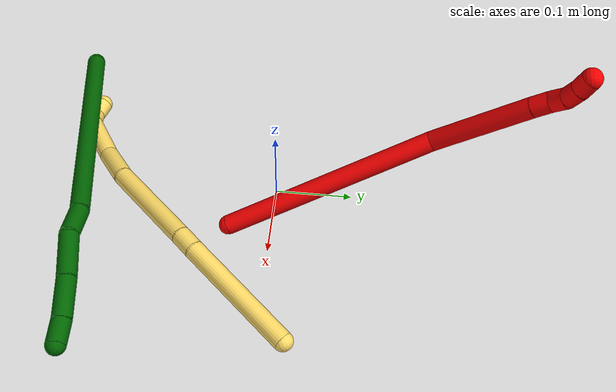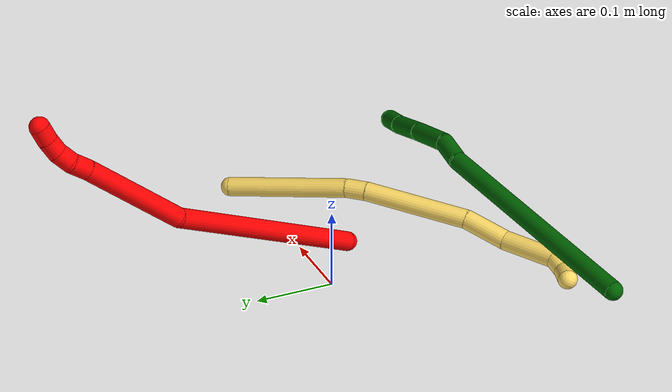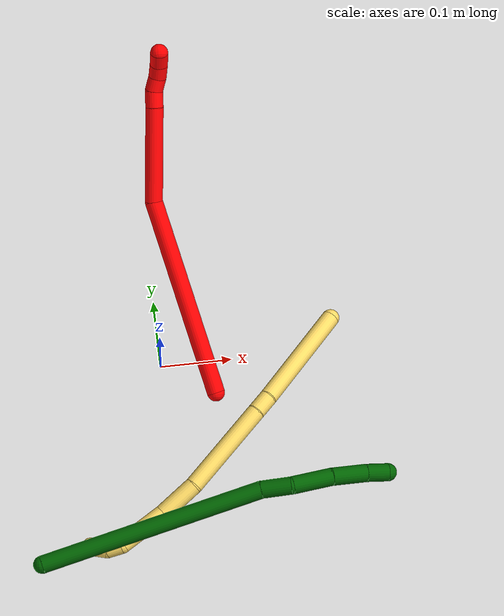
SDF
<sdf version="1.7">
 <world name="default">
  <model name="photoneo_s_sensor">
   <static>1</static>
   <pose>0 0 2 1.57079 1.57079 3.14159</pose>
   <link name="link">
    <inertial><mass>0.1</mass></inertial>
    <sensor name="sensor" type="depth">
     <update_rate>30</update_rate>
     <camera>
      <horizontal_fov>1.22</horizontal_fov>
      <image><width>1920</width><height>1200</height><format>B8G8R8</format></image>
      <clip><near>0.1</near><far>4</far></clip>
      <depth_camera><output>points</output></depth_camera>
     </camera>
     <plugin name="camera_plugin" filename="libgazebo_ros_depth_camera.so">
      <baseline>0.2</baseline>
      <alwaysOn>1</alwaysOn>
      <updateRate>0.0</updateRate>
      <cameraName>camera_ir</cameraName>
      <imageTopicName>/camera/color/image_raw</imageTopicName>
      <cameraInfoTopicName>/camera/color/camera_info</cameraInfoTopicName>
      <depthImageTopicName>/camera/depth/image_raw</depthImageTopicName>
      <depthImageCameraInfoTopicName>/camera/depth/camera_info</depthImageCameraInfoTopicName>
      <pointCloudTopicName>/camera/depth/points</pointCloudTopicName>
      <frameName>fr_optical</frameName>
      <pointCloudCutoff>0.1</pointCloudCutoff>
      <pointCloudCutoffMax>2.0</pointCloudCutoffMax>
      <distortionK1>0</distortionK1>
      <distortionK2>0</distortionK2>
      <distortionK3>0</distortionK3>
      <distortionT1>0</distortionT1>
      <distortionT2>0</distortionT2>
      <CxPrime>0</CxPrime>
      <Cx>0</Cx>
      <Cy>0</Cy>
      <focalLength>0</focalLength>
      <hackBaseline>0</hackBaseline>
     </plugin>
    </sensor>
   </link>
  </model>
  <model name="bin">
   <static>1</static>
   <link name="bottom">
    <collision name="collision-bottom">
     <pose>0 0 -0.01 0 -0 0</pose>
     <geometry><box><size>0.8 0.6 0.02</size></box></geometry>
     <surface>
      <friction><ode><mu>100</mu><mu2>100</mu2></ode></friction>
      <contact><collide_bitmask>65535</collide_bitmask></contact>
     </surface>
    </collision>
   </link>
   <link name="west_wall">
    <collision name="collision-west_wall">
     <pose>-0.41 0 0.1 0 -0 0</pose>
     <geometry><box><size>0.02 0.6 0.2</size></box></geometry>
     <surface>
      <friction><ode><mu>100</mu><mu2>100</mu2></ode></friction>
      <contact><collide_bitmask>65535</collide_bitmask></contact>
     </surface>
    </collision>
   </link>
   <link name="east_wall">
    <collision name="collision-east_wall">
     <pose>0.41 0 0.1 0 -0 0</pose>
     <geometry><box><size>0.02 0.6 0.2</size></box></geometry>
     <surface>
      <friction><ode><mu>100</mu><mu2>100</mu2></ode></friction>
      <contact><collide_bitmask>65535</collide_bitmask></contact>
     </surface>
    </collision>
   </link>
   <link name="south_wall">
    <collision name="collision-south_wall">
     <pose>0 -0.31 0.1 0 -0 0</pose>
     <geometry><box><size>0.8 0.02 0.2</size></box></geometry>
     <surface>
      <friction><ode><mu>100</mu><mu2>100</mu2></ode></friction>
      <contact><collide_bitmask>65535</collide_bitmask></contact>
     </surface>
    </collision>
   </link>
   <link name="north_wall">
    <collision name="collision-north_wall">
     <pose>0 0.31 0.1 0 -0 0</pose>
     <geometry><box><size>0.8 0.02 0.2</size></box></geometry>
     <surface>
      <friction><ode><mu>100</mu><mu2>100</mu2></ode></friction>
      <contact><collide_bitmask>65535</collide_bitmask></contact>
     </surface>
    </collision>
   </link>
  </model>
  <model name="2">
   <static>0</static>
   <link name="2">
    <collision name="collision-cylinder-e_1_1_4">
     <pose>0.000659 0.038646 0.135613 -0.277617 0.004675 -0.000653</pose>
     <geometry><cylinder><radius>0.0125</radius><length>0.282027</length></cylinder></geometry>
     <surface>
      <friction><ode><mu>1.16</mu><mu2>1.16</mu2><slip1>0</slip1><slip2>0</slip2></ode></friction>
      <contact><ode><kp>1e+06</kp><kd>1</kd><max_vel>0</max_vel><min_depth>0.001</min_depth></ode></contact>
     </surface>
    </collision>
    <visual name="visual-cylinder-e_1_1_4">
     <pose>0.000659 0.038646 0.135613 -0.277617 0.004675 -0.000653</pose>
     <geometry><cylinder><radius>0.0125</radius><length>0.282027</length></cylinder></geometry>
     <material><ambient>1 0 0 1</ambient></material>
    </visual>
    <collision name="collision-cylinder-e_2_4_5">
     <pose>-0.020253 0.08428 0.33444 -0.110081 -0.327 0.018178</pose>
     <geometry><cylinder><radius>0.0125</radius><length>0.134315</length></cylinder></geometry>
     <surface>
      <friction><ode><mu>1.16</mu><mu2>1.16</mu2><slip1>0</slip1><slip2>0</slip2></ode></friction>
      <contact><ode><kp>1e+06</kp><kd>1</kd><max_vel>0</max_vel><min_depth>0.001</min_depth></ode></contact>
     </surface>
    </collision>
    <visual name="visual-cylinder-e_2_4_5">
     <pose>-0.020253 0.08428 0.33444 -0.110081 -0.327 0.018178</pose>
     <geometry><cylinder><radius>0.0125</radius><length>0.134315</length></cylinder></geometry>
     <material><ambient>1 0 0 1</ambient></material>
    </visual>
    <collision name="collision-cylinder-e_3_5_6">
     <pose>-0.044558 0.092448 0.408677 -0.106803 -0.241829 0.012989</pose>
     <geometry><cylinder><radius>0.0125</radius><length>0.022838</length></cylinder></geometry>
     <surface>
      <friction><ode><mu>1.16</mu><mu2>1.16</mu2><slip1>0</slip1><slip2>0</slip2></ode></friction>
      <contact><ode><kp>1e+06</kp><kd>1</kd><max_vel>0</max_vel><min_depth>0.001</min_depth></ode></contact>
     </surface>
    </collision>
    <visual name="visual-cylinder-e_3_5_6">
     <pose>-0.044558 0.092448 0.408677 -0.106803 -0.241829 0.012989</pose>
     <geometry><cylinder><radius>0.0125</radius><length>0.022838</length></cylinder></geometry>
     <material><ambient>1 0 0 1</ambient></material>
    </visual>
    <collision name="collision-cylinder-e_4_6_7">
     <pose>-0.052404 0.093011 0.428524 0.070083 -0.524013 -0.018801</pose>
     <geometry><cylinder><radius>0.0125</radius><length>0.020431</length></cylinder></geometry>
     <surface>
      <friction><ode><mu>1.16</mu><mu2>1.16</mu2><slip1>0</slip1><slip2>0</slip2></ode></friction>
      <contact><ode><kp>1e+06</kp><kd>1</kd><max_vel>0</max_vel><min_depth>0.001</min_depth></ode></contact>
     </surface>
    </collision>
    <visual name="visual-cylinder-e_4_6_7">
     <pose>-0.052404 0.093011 0.428524 0.070083 -0.524013 -0.018801</pose>
     <geometry><cylinder><radius>0.0125</radius><length>0.020431</length></cylinder></geometry>
     <material><ambient>1 0 0 1</ambient></material>
    </visual>
    <collision name="collision-cylinder-e_5_7_8">
     <pose>-0.063791 0.09449 0.444951 -0.269257 -0.67196 0.094532</pose>
     <geometry><cylinder><radius>0.0125</radius><length>0.02016</length></cylinder></geometry>
     <surface>
      <friction><ode><mu>1.16</mu><mu2>1.16</mu2><slip1>0</slip1><slip2>0</slip2></ode></friction>
      <contact><ode><kp>1e+06</kp><kd>1</kd><max_vel>0</max_vel><min_depth>0.001</min_depth></ode></contact>
     </surface>
    </collision>
    <visual name="visual-cylinder-e_5_7_8">
     <pose>-0.063791 0.09449 0.444951 -0.269257 -0.67196 0.094532</pose>
     <geometry><cylinder><radius>0.0125</radius><length>0.02016</length></cylinder></geometry>
     <material><ambient>1 0 0 1</ambient></material>
    </visual>
    <collision name="collision-cylinder-e_6_8_2">
     <pose>-0.0768 0.099813 0.459379 -0.441508 -0.728541 0.170714</pose>
     <geometry><cylinder><radius>0.0125</radius><length>0.020229</length></cylinder></geometry>
     <surface>
      <friction><ode><mu>1.16</mu><mu2>1.16</mu2><slip1>0</slip1><slip2>0</slip2></ode></friction>
      <contact><ode><kp>1e+06</kp><kd>1</kd><max_vel>0</max_vel><min_depth>0.001</min_depth></ode></contact>
     </surface>
    </collision>
    <visual name="visual-cylinder-e_6_8_2">
     <pose>-0.0768 0.099813 0.459379 -0.441508 -0.728541 0.170714</pose>
     <geometry><cylinder><radius>0.0125</radius><length>0.020229</length></cylinder></geometry>
     <material><ambient>1 0 0 1</ambient></material>
    </visual>
    <collision name="collision-sphere-2">
     <pose>-0.083534 0.103038 0.466202 0 -0 0</pose>
     <geometry><sphere><radius>0.0125</radius></sphere></geometry>
     <surface>
      <friction><ode><mu>1.16</mu><mu2>1.16</mu2><slip1>0</slip1><slip2>0</slip2></ode></friction>
      <contact><ode><kp>1e+06</kp><kd>1</kd><max_vel>0</max_vel><min_depth>0.001</min_depth></ode></contact>
     </surface>
    </collision>
    <visual name="visual-sphere-2">
     <pose>-0.083534 0.103038 0.466202 0 -0 0</pose>
     <geometry><sphere><radius>0.0125</radius></sphere></geometry>
     <material><ambient>1 0 0 1</ambient></material>
    </visual>
    <collision name="collision-sphere-4">
     <pose>0.001319 0.077293 0.271226 0 -0 0</pose>
     <geometry><sphere><radius>0.0125</radius></sphere></geometry>
     <surface>
      <friction><ode><mu>1.16</mu><mu2>1.16</mu2><slip1>0</slip1><slip2>0</slip2></ode></friction>
      <contact><ode><kp>1e+06</kp><kd>1</kd><max_vel>0</max_vel><min_depth>0.001</min_depth></ode></contact>
     </surface>
    </collision>
    <visual name="visual-sphere-4">
     <pose>0.001319 0.077293 0.271226 0 -0 0</pose>
     <geometry><sphere><radius>0.0125</radius></sphere></geometry>
     <material><ambient>1 0 0 1</ambient></material>
    </visual>
    <collision name="collision-sphere-1">
     <geometry><sphere><radius>0.0125</radius></sphere></geometry>
     <surface>
      <friction><ode><mu>1.16</mu><mu2>1.16</mu2><slip1>0</slip1><slip2>0</slip2></ode></friction>
      <contact><ode><kp>1e+06</kp><kd>1</kd><max_vel>0</max_vel><min_depth>0.001</min_depth></ode></contact>
     </surface>
    </collision>
    <visual name="visual-sphere-1">
     <geometry><sphere><radius>0.0125</radius></sphere></geometry>
     <material><ambient>1 0 0 1</ambient></material>
    </visual>
    <collision name="collision-sphere-8">
     <pose>-0.070066 0.096589 0.452555 0 -0 0</pose>
     <geometry><sphere><radius>0.0125</radius></sphere></geometry>
     <surface>
      <friction><ode><mu>1.16</mu><mu2>1.16</mu2><slip1>0</slip1><slip2>0</slip2></ode></friction>
      <contact><ode><kp>1e+06</kp><kd>1</kd><max_vel>0</max_vel><min_depth>0.001</min_depth></ode></contact>
     </surface>
    </collision>
    <visual name="visual-sphere-8">
     <pose>-0.070066 0.096589 0.452555 0 -0 0</pose>
     <geometry><sphere><radius>0.0125</radius></sphere></geometry>
     <material><ambient>1 0 0 1</ambient></material>
    </visual>
    <collision name="collision-sphere-5">
     <pose>-0.041824 0.091267 0.397654 0 -0 0</pose>
     <geometry><sphere><radius>0.0125</radius></sphere></geometry>
     <surface>
      <friction><ode><mu>1.16</mu><mu2>1.16</mu2><slip1>0</slip1><slip2>0</slip2></ode></friction>
      <contact><ode><kp>1e+06</kp><kd>1</kd><max_vel>0</max_vel><min_depth>0.001</min_depth></ode></contact>
     </surface>
    </collision>
    <visual name="visual-sphere-5">
     <pose>-0.041824 0.091267 0.397654 0 -0 0</pose>
     <geometry><sphere><radius>0.0125</radius></sphere></geometry>
     <material><ambient>1 0 0 1</ambient></material>
    </visual>
    <collision name="collision-sphere-6">
     <pose>-0.047293 0.09363 0.419701 0 -0 0</pose>
     <geometry><sphere><radius>0.0125</radius></sphere></geometry>
     <surface>
      <friction><ode><mu>1.16</mu><mu2>1.16</mu2><slip1>0</slip1><slip2>0</slip2></ode></friction>
      <contact><ode><kp>1e+06</kp><kd>1</kd><max_vel>0</max_vel><min_depth>0.001</min_depth></ode></contact>
     </surface>
    </collision>
    <visual name="visual-sphere-6">
     <pose>-0.047293 0.09363 0.419701 0 -0 0</pose>
     <geometry><sphere><radius>0.0125</radius></sphere></geometry>
     <material><ambient>1 0 0 1</ambient></material>
    </visual>
    <collision name="collision-sphere-7">
     <pose>-0.057516 0.092392 0.437347 0 -0 0</pose>
     <geometry><sphere><radius>0.0125</radius></sphere></geometry>
     <surface>
      <friction><ode><mu>1.16</mu><mu2>1.16</mu2><slip1>0</slip1><slip2>0</slip2></ode></friction>
      <contact><ode><kp>1e+06</kp><kd>1</kd><max_vel>0</max_vel><min_depth>0.001</min_depth></ode></contact>
     </surface>
    </collision>
    <visual name="visual-sphere-7">
     <pose>-0.057516 0.092392 0.437347 0 -0 0</pose>
     <geometry><sphere><radius>0.0125</radius></sphere></geometry>
     <material><ambient>1 0 0 1</ambient></material>
    </visual>
    <inertial>
     <pose>-0.014924 0.06031 0.239036 0 -0 0</pose>
     <mass>0.5</mass>
     <inertia>
      <ixx>0.002078</ixx>
      <ixy>0</ixy>
      <ixz>0</ixz>
      <iyy>0.002031</iyy>
      <iyz>0</iyz>
      <izz>-0.00044</izz>
     </inertia>
    </inertial>
   </link>
   <pose>0.072097 -0.053338 0.011497 1.00225 0.949317 2.62866</pose>
  </model>
  <model name="5">
   <static>0</static>
   <link name="5">
    <collision name="collision-cylinder-e_1_1_4">
     <pose>-0.05545 -0.044055 -0.038058 2.28329 -0.761064 -1.43676</pose>
     <geometry><cylinder><radius>0.0125</radius><length>0.160797</length></cylinder></geometry>
     <surface>
      <friction><ode><mu>1.16</mu><mu2>1.16</mu2><slip1>0</slip1><slip2>0</slip2></ode></friction>
      <contact><ode><kp>1e+06</kp><kd>1</kd><max_vel>0</max_vel><min_depth>0.001</min_depth></ode></contact>
     </surface>
    </collision>
    <visual name="visual-cylinder-e_1_1_4">
     <pose>-0.05545 -0.044055 -0.038058 2.28329 -0.761064 -1.43676</pose>
     <geometry><cylinder><radius>0.0125</radius><length>0.160797</length></cylinder></geometry>
     <material><ambient>1 0.858824 0.4 1</ambient></material>
    </visual>
    <collision name="collision-cylinder-e_2_4_5">
     <pose>-0.121313 -0.093926 -0.082923 2.43452 -0.860543 -1.78712</pose>
     <geometry><cylinder><radius>0.0125</radius><length>0.027465</length></cylinder></geometry>
     <surface>
      <friction><ode><mu>1.16</mu><mu2>1.16</mu2><slip1>0</slip1><slip2>0</slip2></ode></friction>
      <contact><ode><kp>1e+06</kp><kd>1</kd><max_vel>0</max_vel><min_depth>0.001</min_depth></ode></contact>
     </surface>
    </collision>
    <visual name="visual-cylinder-e_2_4_5">
     <pose>-0.121313 -0.093926 -0.082923 2.43452 -0.860543 -1.78712</pose>
     <geometry><cylinder><radius>0.0125</radius><length>0.027465</length></cylinder></geometry>
     <material><ambient>1 0.858824 0.4 1</ambient></material>
    </visual>
    <collision name="collision-cylinder-e_3_5_6">
     <pose>-0.185626 -0.121972 -0.12592 2.59076 -0.903445 -2.08676</pose>
     <geometry><cylinder><radius>0.0125</radius><length>0.137247</length></cylinder></geometry>
     <surface>
      <friction><ode><mu>1.16</mu><mu2>1.16</mu2><slip1>0</slip1><slip2>0</slip2></ode></friction>
      <contact><ode><kp>1e+06</kp><kd>1</kd><max_vel>0</max_vel><min_depth>0.001</min_depth></ode></contact>
     </surface>
    </collision>
    <visual name="visual-cylinder-e_3_5_6">
     <pose>-0.185626 -0.121972 -0.12592 2.59076 -0.903445 -2.08676</pose>
     <geometry><cylinder><radius>0.0125</radius><length>0.137247</length></cylinder></geometry>
     <material><ambient>1 0.858824 0.4 1</ambient></material>
    </visual>
    <collision name="collision-cylinder-e_4_6_7">
     <pose>-0.265175 -0.148078 -0.175399 2.85777 -1.07587 -2.67151</pose>
     <geometry><cylinder><radius>0.0125</radius><length>0.058291</length></cylinder></geometry>
     <surface>
      <friction><ode><mu>1.16</mu><mu2>1.16</mu2><slip1>0</slip1><slip2>0</slip2></ode></friction>
      <contact><ode><kp>1e+06</kp><kd>1</kd><max_vel>0</max_vel><min_depth>0.001</min_depth></ode></contact>
     </surface>
    </collision>
    <visual name="visual-cylinder-e_4_6_7">
     <pose>-0.265175 -0.148078 -0.175399 2.85777 -1.07587 -2.67151</pose>
     <geometry><cylinder><radius>0.0125</radius><length>0.058291</length></cylinder></geometry>
     <material><ambient>1 0.858824 0.4 1</ambient></material>
    </visual>
    <collision name="collision-cylinder-e_5_7_8">
     <pose>-0.322711 -0.162371 -0.20099 2.439 -1.10276 -2.06676</pose>
     <geometry><cylinder><radius>0.0125</radius><length>0.071461</length></cylinder></geometry>
     <surface>
      <friction><ode><mu>1.16</mu><mu2>1.16</mu2><slip1>0</slip1><slip2>0</slip2></ode></friction>
      <contact><ode><kp>1e+06</kp><kd>1</kd><max_vel>0</max_vel><min_depth>0.001</min_depth></ode></contact>
     </surface>
    </collision>
    <visual name="visual-cylinder-e_5_7_8">
     <pose>-0.322711 -0.162371 -0.20099 2.439 -1.10276 -2.06676</pose>
     <geometry><cylinder><radius>0.0125</radius><length>0.071461</length></cylinder></geometry>
     <material><ambient>1 0.858824 0.4 1</ambient></material>
    </visual>
    <collision name="collision-cylinder-e_6_8_9">
     <pose>-0.365433 -0.171325 -0.214003 -2.02375 -1.42188 1.88529</pose>
     <geometry><cylinder><radius>0.0125</radius><length>0.021911</length></cylinder></geometry>
     <surface>
      <friction><ode><mu>1.16</mu><mu2>1.16</mu2><slip1>0</slip1><slip2>0</slip2></ode></friction>
      <contact><ode><kp>1e+06</kp><kd>1</kd><max_vel>0</max_vel><min_depth>0.001</min_depth></ode></contact>
     </surface>
    </collision>
    <visual name="visual-cylinder-e_6_8_9">
     <pose>-0.365433 -0.171325 -0.214003 -2.02375 -1.42188 1.88529</pose>
     <geometry><cylinder><radius>0.0125</radius><length>0.021911</length></cylinder></geometry>
     <material><ambient>1 0.858824 0.4 1</ambient></material>
    </visual>
    <collision name="collision-cylinder-e_7_9_2">
     <pose>-0.386752 -0.169216 -0.21025 -0.144238 -1.16448 0.095056</pose>
     <geometry><cylinder><radius>0.0125</radius><length>0.022828</length></cylinder></geometry>
     <surface>
      <friction><ode><mu>1.16</mu><mu2>1.16</mu2><slip1>0</slip1><slip2>0</slip2></ode></friction>
      <contact><ode><kp>1e+06</kp><kd>1</kd><max_vel>0</max_vel><min_depth>0.001</min_depth></ode></contact>
     </surface>
    </collision>
    <visual name="visual-cylinder-e_7_9_2">
     <pose>-0.386752 -0.169216 -0.21025 -0.144238 -1.16448 0.095056</pose>
     <geometry><cylinder><radius>0.0125</radius><length>0.022828</length></cylinder></geometry>
     <material><ambient>1 0.858824 0.4 1</ambient></material>
    </visual>
    <collision name="collision-sphere-2">
     <pose>-0.397237 -0.168567 -0.205786 0 -0 0</pose>
     <geometry><sphere><radius>0.0125</radius></sphere></geometry>
     <surface>
      <friction><ode><mu>1.16</mu><mu2>1.16</mu2><slip1>0</slip1><slip2>0</slip2></ode></friction>
      <contact><ode><kp>1e+06</kp><kd>1</kd><max_vel>0</max_vel><min_depth>0.001</min_depth></ode></contact>
     </surface>
    </collision>
    <visual name="visual-sphere-2">
     <pose>-0.397237 -0.168567 -0.205786 0 -0 0</pose>
     <geometry><sphere><radius>0.0125</radius></sphere></geometry>
     <material><ambient>1 0.858824 0.4 1</ambient></material>
    </visual>
    <collision name="collision-sphere-9">
     <pose>-0.376267 -0.169864 -0.214715 0 -0 0</pose>
     <geometry><sphere><radius>0.0125</radius></sphere></geometry>
     <surface>
      <friction><ode><mu>1.16</mu><mu2>1.16</mu2><slip1>0</slip1><slip2>0</slip2></ode></friction>
      <contact><ode><kp>1e+06</kp><kd>1</kd><max_vel>0</max_vel><min_depth>0.001</min_depth></ode></contact>
     </surface>
    </collision>
    <visual name="visual-sphere-9">
     <pose>-0.376267 -0.169864 -0.214715 0 -0 0</pose>
     <geometry><sphere><radius>0.0125</radius></sphere></geometry>
     <material><ambient>1 0.858824 0.4 1</ambient></material>
    </visual>
    <collision name="collision-sphere-4">
     <pose>-0.1109 -0.088109 -0.076115 0 -0 0</pose>
     <geometry><sphere><radius>0.0125</radius></sphere></geometry>
     <surface>
      <friction><ode><mu>1.16</mu><mu2>1.16</mu2><slip1>0</slip1><slip2>0</slip2></ode></friction>
      <contact><ode><kp>1e+06</kp><kd>1</kd><max_vel>0</max_vel><min_depth>0.001</min_depth></ode></contact>
     </surface>
    </collision>
    <visual name="visual-sphere-4">
     <pose>-0.1109 -0.088109 -0.076115 0 -0 0</pose>
     <geometry><sphere><radius>0.0125</radius></sphere></geometry>
     <material><ambient>1 0.858824 0.4 1</ambient></material>
    </visual>
    <collision name="collision-sphere-1">
     <geometry><sphere><radius>0.0125</radius></sphere></geometry>
     <surface>
      <friction><ode><mu>1.16</mu><mu2>1.16</mu2><slip1>0</slip1><slip2>0</slip2></ode></friction>
      <contact><ode><kp>1e+06</kp><kd>1</kd><max_vel>0</max_vel><min_depth>0.001</min_depth></ode></contact>
     </surface>
    </collision>
    <visual name="visual-sphere-1">
     <geometry><sphere><radius>0.0125</radius></sphere></geometry>
     <material><ambient>1 0.858824 0.4 1</ambient></material>
    </visual>
    <collision name="collision-sphere-8">
     <pose>-0.354599 -0.172787 -0.213292 0 -0 0</pose>
     <geometry><sphere><radius>0.0125</radius></sphere></geometry>
     <surface>
      <friction><ode><mu>1.16</mu><mu2>1.16</mu2><slip1>0</slip1><slip2>0</slip2></ode></friction>
      <contact><ode><kp>1e+06</kp><kd>1</kd><max_vel>0</max_vel><min_depth>0.001</min_depth></ode></contact>
     </surface>
    </collision>
    <visual name="visual-sphere-8">
     <pose>-0.354599 -0.172787 -0.213292 0 -0 0</pose>
     <geometry><sphere><radius>0.0125</radius></sphere></geometry>
     <material><ambient>1 0.858824 0.4 1</ambient></material>
    </visual>
    <collision name="collision-sphere-5">
     <pose>-0.131725 -0.099743 -0.08973 0 -0 0</pose>
     <geometry><sphere><radius>0.0125</radius></sphere></geometry>
     <surface>
      <friction><ode><mu>1.16</mu><mu2>1.16</mu2><slip1>0</slip1><slip2>0</slip2></ode></friction>
      <contact><ode><kp>1e+06</kp><kd>1</kd><max_vel>0</max_vel><min_depth>0.001</min_depth></ode></contact>
     </surface>
    </collision>
    <visual name="visual-sphere-5">
     <pose>-0.131725 -0.099743 -0.08973 0 -0 0</pose>
     <geometry><sphere><radius>0.0125</radius></sphere></geometry>
     <material><ambient>1 0.858824 0.4 1</ambient></material>
    </visual>
    <collision name="collision-sphere-6">
     <pose>-0.239527 -0.144201 -0.16211 0 -0 0</pose>
     <geometry><sphere><radius>0.0125</radius></sphere></geometry>
     <surface>
      <friction><ode><mu>1.16</mu><mu2>1.16</mu2><slip1>0</slip1><slip2>0</slip2></ode></friction>
      <contact><ode><kp>1e+06</kp><kd>1</kd><max_vel>0</max_vel><min_depth>0.001</min_depth></ode></contact>
     </surface>
    </collision>
    <visual name="visual-sphere-6">
     <pose>-0.239527 -0.144201 -0.16211 0 -0 0</pose>
     <geometry><sphere><radius>0.0125</radius></sphere></geometry>
     <material><ambient>1 0.858824 0.4 1</ambient></material>
    </visual>
    <collision name="collision-sphere-7">
     <pose>-0.290823 -0.151954 -0.188688 0 -0 0</pose>
     <geometry><sphere><radius>0.0125</radius></sphere></geometry>
     <surface>
      <friction><ode><mu>1.16</mu><mu2>1.16</mu2><slip1>0</slip1><slip2>0</slip2></ode></friction>
      <contact><ode><kp>1e+06</kp><kd>1</kd><max_vel>0</max_vel><min_depth>0.001</min_depth></ode></contact>
     </surface>
    </collision>
    <visual name="visual-sphere-7">
     <pose>-0.290823 -0.151954 -0.188688 0 -0 0</pose>
     <geometry><sphere><radius>0.0125</radius></sphere></geometry>
     <material><ambient>1 0.858824 0.4 1</ambient></material>
    </visual>
    <inertial>
     <pose>-0.186158 -0.108511 -0.11951 0 -0 0</pose>
     <mass>0.5</mass>
     <inertia>
      <ixx>-0.00047</ixx>
      <ixy>0</ixy>
      <ixz>0</ixz>
      <iyy>-2.8e-05</iyy>
      <iyz>0</iyz>
      <izz>0.00073</izz>
     </inertia>
    </inertial>
   </link>
   <pose>0.245814 0.036431 0.023379 -1.0497 -0.135902 0.096688</pose>
  </model>
  <model name="6">
   <static>0</static>
   <link name="6">
    <collision name="collision-cylinder-e_1_1_4">
     <pose>0.155245 -0.004686 -0.033233 3.00151 1.35789 2.96815</pose>
     <geometry><cylinder><radius>0.0125</radius><length>0.317663</length></cylinder></geometry>
     <surface>
      <friction><ode><mu>1.16</mu><mu2>1.16</mu2><slip1>0</slip1><slip2>0</slip2></ode></friction>
      <contact><ode><kp>1e+06</kp><kd>1</kd><max_vel>0</max_vel><min_depth>0.001</min_depth></ode></contact>
     </surface>
    </collision>
    <visual name="visual-cylinder-e_1_1_4">
     <pose>0.155245 -0.004686 -0.033233 3.00151 1.35789 2.96815</pose>
     <geometry><cylinder><radius>0.0125</radius><length>0.317663</length></cylinder></geometry>
     <material><ambient>0 0.392157 0.003922 1</ambient></material>
    </visual>
    <collision name="collision-cylinder-e_2_4_5">
     <pose>0.331583 -0.007103 -0.067433 -1.97363 1.45442 -1.86405</pose>
     <geometry><cylinder><radius>0.0125</radius><length>0.042473</length></cylinder></geometry>
     <surface>
      <friction><ode><mu>1.16</mu><mu2>1.16</mu2><slip1>0</slip1><slip2>0</slip2></ode></friction>
      <contact><ode><kp>1e+06</kp><kd>1</kd><max_vel>0</max_vel><min_depth>0.001</min_depth></ode></contact>
     </surface>
    </collision>
    <visual name="visual-cylinder-e_2_4_5">
     <pose>0.331583 -0.007103 -0.067433 -1.97363 1.45442 -1.86405</pose>
     <geometry><cylinder><radius>0.0125</radius><length>0.042473</length></cylinder></geometry>
     <material><ambient>0 0.392157 0.003922 1</ambient></material>
    </visual>
    <collision name="collision-cylinder-e_3_5_6">
     <pose>0.380719 -0.012138 -0.069403 1.70738 1.31374 1.44818</pose>
     <geometry><cylinder><radius>0.0125</radius><length>0.05799</length></cylinder></geometry>
     <surface>
      <friction><ode><mu>1.16</mu><mu2>1.16</mu2><slip1>0</slip1><slip2>0</slip2></ode></friction>
      <contact><ode><kp>1e+06</kp><kd>1</kd><max_vel>0</max_vel><min_depth>0.001</min_depth></ode></contact>
     </surface>
    </collision>
    <visual name="visual-cylinder-e_3_5_6">
     <pose>0.380719 -0.012138 -0.069403 1.70738 1.31374 1.44818</pose>
     <geometry><cylinder><radius>0.0125</radius><length>0.05799</length></cylinder></geometry>
     <material><ambient>0 0.392157 0.003922 1</ambient></material>
    </visual>
    <collision name="collision-cylinder-e_4_6_7">
     <pose>0.433142 -0.026422 -0.068514 1.306 1.28239 1.03759</pose>
     <geometry><cylinder><radius>0.0125</radius><length>0.050863</length></cylinder></geometry>
     <surface>
      <friction><ode><mu>1.16</mu><mu2>1.16</mu2><slip1>0</slip1><slip2>0</slip2></ode></friction>
      <contact><ode><kp>1e+06</kp><kd>1</kd><max_vel>0</max_vel><min_depth>0.001</min_depth></ode></contact>
     </surface>
    </collision>
    <visual name="visual-cylinder-e_4_6_7">
     <pose>0.433142 -0.026422 -0.068514 1.306 1.28239 1.03759</pose>
     <geometry><cylinder><radius>0.0125</radius><length>0.050863</length></cylinder></geometry>
     <material><ambient>0 0.392157 0.003922 1</ambient></material>
    </visual>
    <collision name="collision-cylinder-e_5_7_2">
     <pose>0.472645 -0.036192 -0.064631 0.951034 1.34796 0.780414</pose>
     <geometry><cylinder><radius>0.0125</radius><length>0.03101</length></cylinder></geometry>
     <surface>
      <friction><ode><mu>1.16</mu><mu2>1.16</mu2><slip1>0</slip1><slip2>0</slip2></ode></friction>
      <contact><ode><kp>1e+06</kp><kd>1</kd><max_vel>0</max_vel><min_depth>0.001</min_depth></ode></contact>
     </surface>
    </collision>
    <visual name="visual-cylinder-e_5_7_2">
     <pose>0.472645 -0.036192 -0.064631 0.951034 1.34796 0.780414</pose>
     <geometry><cylinder><radius>0.0125</radius><length>0.03101</length></cylinder></geometry>
     <material><ambient>0 0.392157 0.003922 1</ambient></material>
    </visual>
    <collision name="collision-sphere-2">
     <pose>0.487767 -0.038982 -0.06264 0 -0 0</pose>
     <geometry><sphere><radius>0.0125</radius></sphere></geometry>
     <surface>
      <friction><ode><mu>1.16</mu><mu2>1.16</mu2><slip1>0</slip1><slip2>0</slip2></ode></friction>
      <contact><ode><kp>1e+06</kp><kd>1</kd><max_vel>0</max_vel><min_depth>0.001</min_depth></ode></contact>
     </surface>
    </collision>
    <visual name="visual-sphere-2">
     <pose>0.487767 -0.038982 -0.06264 0 -0 0</pose>
     <geometry><sphere><radius>0.0125</radius></sphere></geometry>
     <material><ambient>0 0.392157 0.003922 1</ambient></material>
    </visual>
    <collision name="collision-sphere-7">
     <pose>0.457523 -0.033403 -0.066621 0 -0 0</pose>
     <geometry><sphere><radius>0.0125</radius></sphere></geometry>
     <surface>
      <friction><ode><mu>1.16</mu><mu2>1.16</mu2><slip1>0</slip1><slip2>0</slip2></ode></friction>
      <contact><ode><kp>1e+06</kp><kd>1</kd><max_vel>0</max_vel><min_depth>0.001</min_depth></ode></contact>
     </surface>
    </collision>
    <visual name="visual-sphere-7">
     <pose>0.457523 -0.033403 -0.066621 0 -0 0</pose>
     <geometry><sphere><radius>0.0125</radius></sphere></geometry>
     <material><ambient>0 0.392157 0.003922 1</ambient></material>
    </visual>
    <collision name="collision-sphere-6">
     <pose>0.408761 -0.01944 -0.070407 0 -0 0</pose>
     <geometry><sphere><radius>0.0125</radius></sphere></geometry>
     <surface>
      <friction><ode><mu>1.16</mu><mu2>1.16</mu2><slip1>0</slip1><slip2>0</slip2></ode></friction>
      <contact><ode><kp>1e+06</kp><kd>1</kd><max_vel>0</max_vel><min_depth>0.001</min_depth></ode></contact>
     </surface>
    </collision>
    <visual name="visual-sphere-6">
     <pose>0.408761 -0.01944 -0.070407 0 -0 0</pose>
     <geometry><sphere><radius>0.0125</radius></sphere></geometry>
     <material><ambient>0 0.392157 0.003922 1</ambient></material>
    </visual>
    <collision name="collision-sphere-5">
     <pose>0.352676 -0.004835 -0.0684 0 -0 0</pose>
     <geometry><sphere><radius>0.0125</radius></sphere></geometry>
     <surface>
      <friction><ode><mu>1.16</mu><mu2>1.16</mu2><slip1>0</slip1><slip2>0</slip2></ode></friction>
      <contact><ode><kp>1e+06</kp><kd>1</kd><max_vel>0</max_vel><min_depth>0.001</min_depth></ode></contact>
     </surface>
    </collision>
    <visual name="visual-sphere-5">
     <pose>0.352676 -0.004835 -0.0684 0 -0 0</pose>
     <geometry><sphere><radius>0.0125</radius></sphere></geometry>
     <material><ambient>0 0.392157 0.003922 1</ambient></material>
    </visual>
    <collision name="collision-sphere-1">
     <geometry><sphere><radius>0.0125</radius></sphere></geometry>
     <surface>
      <friction><ode><mu>1.16</mu><mu2>1.16</mu2><slip1>0</slip1><slip2>0</slip2></ode></friction>
      <contact><ode><kp>1e+06</kp><kd>1</kd><max_vel>0</max_vel><min_depth>0.001</min_depth></ode></contact>
     </surface>
    </collision>
    <visual name="visual-sphere-1">
     <geometry><sphere><radius>0.0125</radius></sphere></geometry>
     <material><ambient>0 0.392157 0.003922 1</ambient></material>
    </visual>
    <collision name="collision-sphere-4">
     <pose>0.31049 -0.009372 -0.066466 0 -0 0</pose>
     <geometry><sphere><radius>0.0125</radius></sphere></geometry>
     <surface>
      <friction><ode><mu>1.16</mu><mu2>1.16</mu2><slip1>0</slip1><slip2>0</slip2></ode></friction>
      <contact><ode><kp>1e+06</kp><kd>1</kd><max_vel>0</max_vel><min_depth>0.001</min_depth></ode></contact>
     </surface>
    </collision>
    <visual name="visual-sphere-4">
     <pose>0.31049 -0.009372 -0.066466 0 -0 0</pose>
     <geometry><sphere><radius>0.0125</radius></sphere></geometry>
     <material><ambient>0 0.392157 0.003922 1</ambient></material>
    </visual>
    <inertial>
     <pose>0.24433 -0.009921 -0.04587 0 -0 0</pose>
     <mass>0.5</mass>
     <inertia>
      <ixx>-0.000412</ixx>
      <ixy>0</ixy>
      <ixz>0</ixz>
      <iyy>0.002824</iyy>
      <iyz>0</iyz>
      <izz>-0.002583</izz>
     </inertia>
    </inertial>
   </link>
   <pose>-0.195749 -0.287793 0.028761 2.18629 -0.030024 -0.003392</pose>
  </model>
 </world>
</sdf>
